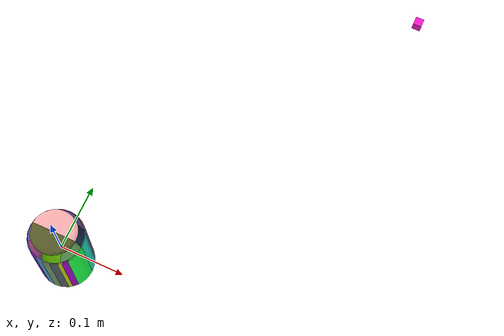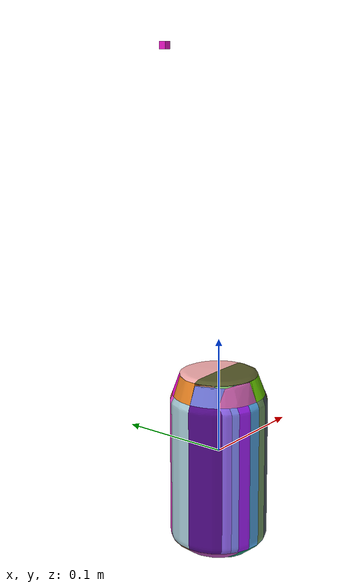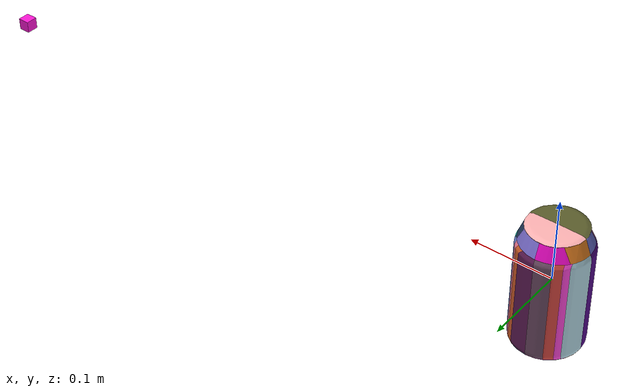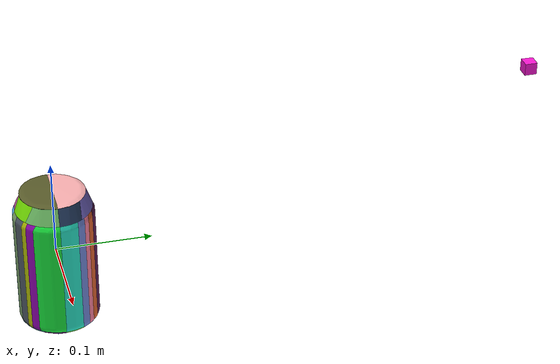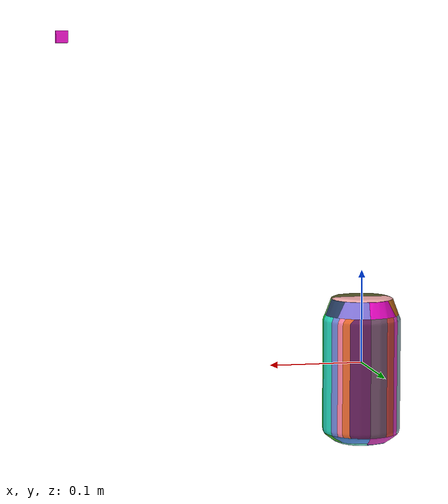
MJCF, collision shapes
<?xml version="1.0" encoding="utf-8"?>
<mujoco model="top_watertight_tiny">

  <asset>

    <mesh file="top_watertight_tiny.obj"/>

    <mesh file="top_watertight_tiny_collision_0.obj"/>

    <mesh file="top_watertight_tiny_collision_1.obj"/>

    <mesh file="top_watertight_tiny_collision_2.obj"/>

    <mesh file="top_watertight_tiny_collision_3.obj"/>

    <mesh file="top_watertight_tiny_collision_4.obj"/>

    <mesh file="top_watertight_tiny_collision_5.obj"/>

    <mesh file="top_watertight_tiny_collision_6.obj"/>

    <mesh file="top_watertight_tiny_collision_7.obj"/>

    <mesh file="top_watertight_tiny_collision_8.obj"/>

    <mesh file="top_watertight_tiny_collision_9.obj"/>

    <mesh file="top_watertight_tiny_collision_10.obj"/>

    <mesh file="top_watertight_tiny_collision_11.obj"/>

    <mesh file="top_watertight_tiny_collision_12.obj"/>

    <mesh file="top_watertight_tiny_collision_13.obj"/>

    <mesh file="top_watertight_tiny_collision_14.obj"/>

    <mesh file="top_watertight_tiny_collision_15.obj"/>

    <mesh file="top_watertight_tiny_collision_16.obj"/>

    <mesh file="top_watertight_tiny_collision_17.obj"/>

    <mesh file="top_watertight_tiny_collision_18.obj"/>

    <mesh file="top_watertight_tiny_collision_19.obj"/>

    <mesh file="top_watertight_tiny_collision_20.obj"/>

    <mesh file="top_watertight_tiny_collision_21.obj"/>

    <mesh file="top_watertight_tiny_collision_22.obj"/>

    <mesh file="top_watertight_tiny_collision_23.obj"/>

    <mesh file="top_watertight_tiny_collision_24.obj"/>

    <mesh file="top_watertight_tiny_collision_25.obj"/>

    <mesh file="top_watertight_tiny_collision_26.obj"/>

    <mesh file="top_watertight_tiny_collision_27.obj"/>

    <mesh file="top_watertight_tiny_collision_28.obj"/>

    <mesh file="top_watertight_tiny_collision_29.obj"/>

    <mesh file="top_watertight_tiny_collision_30.obj"/>

    <mesh file="top_watertight_tiny_collision_31.obj"/>

    <mesh file="top_watertight_tiny_collision_32.obj"/>

    <mesh file="top_watertight_tiny_collision_33.obj"/>

    <mesh file="top_watertight_tiny_collision_34.obj"/>

    <mesh file="top_watertight_tiny_collision_35.obj"/>

    <mesh file="top_watertight_tiny_collision_36.obj"/>

    <mesh file="top_watertight_tiny_collision_37.obj"/>

    <mesh file="top_watertight_tiny_collision_38.obj"/>

    <mesh file="top_watertight_tiny_collision_39.obj"/>

    <mesh file="top_watertight_tiny_collision_40.obj"/>

    <mesh file="top_watertight_tiny_collision_41.obj"/>

    <mesh file="top_watertight_tiny_collision_42.obj"/>

    <mesh file="top_watertight_tiny_collision_43.obj"/>

    <mesh file="top_watertight_tiny_collision_44.obj"/>

    <mesh file="top_watertight_tiny_collision_45.obj"/>

    <mesh file="top_watertight_tiny_collision_46.obj"/>

    <mesh file="bottom_watertight_tiny.obj"/>

    <mesh file="bottom_watertight_tiny_collision_0.obj"/>

  </asset>

  <worldbody>

    <body name="top_watertight_tiny">

      <freejoint/>

      <geom mesh="top_watertight_tiny" group="2" type="mesh" rgba="0.4 0.2 0.7 1" contype="0" conaffinity="0" solimp="0.90 0.95 0.001" solref="0.02 1.0" density="100" friction="0.95 0.4 0.3"/>

      <geom mesh="top_watertight_tiny_collision_0" rgba="0.9808587149216802 0.688757004252128 0.6914227652455278 1" group="3" type="mesh" solimp="0.90 0.95 0.001" solref="0.02 1.0" density="100" friction="0.95 0.4 0.3"/>

      <geom mesh="top_watertight_tiny_collision_1" rgba="0.3473590171456915 0.3564221612091083 0.16524375259850732 1" group="3" type="mesh" solimp="0.90 0.95 0.001" solref="0.02 1.0" density="100" friction="0.95 0.4 0.3"/>

      <geom mesh="top_watertight_tiny_collision_2" rgba="0.4911159556395729 0.5210268594249214 0.9342030591898492 1" group="3" type="mesh" solimp="0.90 0.95 0.001" solref="0.02 1.0" density="100" friction="0.95 0.4 0.3"/>

      <geom mesh="top_watertight_tiny_collision_3" rgba="0.4416828634371327 0.5307447166107859 0.8498162715234978 1" group="3" type="mesh" solimp="0.90 0.95 0.001" solref="0.02 1.0" density="100" friction="0.95 0.4 0.3"/>

      <geom mesh="top_watertight_tiny_collision_4" rgba="0.5262390945720031 0.4722169084664546 0.8768640225006195 1" group="3" type="mesh" solimp="0.90 0.95 0.001" solref="0.02 1.0" density="100" friction="0.95 0.4 0.3"/>

      <geom mesh="top_watertight_tiny_collision_5" rgba="0.42536211377563193 0.4526179426788307 0.828663969504089 1" group="3" type="mesh" solimp="0.90 0.95 0.001" solref="0.02 1.0" density="100" friction="0.95 0.4 0.3"/>

      <geom mesh="top_watertight_tiny_collision_6" rgba="0.9778428919842519 0.03647350226275248 0.8191177751614085 1" group="3" type="mesh" solimp="0.90 0.95 0.001" solref="0.02 1.0" density="100" friction="0.95 0.4 0.3"/>

      <geom mesh="top_watertight_tiny_collision_7" rgba="0.44916284037315934 0.7608011051155579 0.41473869874237446 1" group="3" type="mesh" solimp="0.90 0.95 0.001" solref="0.02 1.0" density="100" friction="0.95 0.4 0.3"/>

      <geom mesh="top_watertight_tiny_collision_8" rgba="0.15395705277010763 0.24753919171630434 0.3932170310370786 1" group="3" type="mesh" solimp="0.90 0.95 0.001" solref="0.02 1.0" density="100" friction="0.95 0.4 0.3"/>

      <geom mesh="top_watertight_tiny_collision_9" rgba="0.7386600875913494 0.3374003104110699 0.6238710651830102 1" group="3" type="mesh" solimp="0.90 0.95 0.001" solref="0.02 1.0" density="100" friction="0.95 0.4 0.3"/>

      <geom mesh="top_watertight_tiny_collision_10" rgba="0.4850038502533529 0.921880714996117 0.015849229714582136 1" group="3" type="mesh" solimp="0.90 0.95 0.001" solref="0.02 1.0" density="100" friction="0.95 0.4 0.3"/>

      <geom mesh="top_watertight_tiny_collision_11" rgba="0.9021381200886316 0.5085046637491153 0.13079843166298932 1" group="3" type="mesh" solimp="0.90 0.95 0.001" solref="0.02 1.0" density="100" friction="0.95 0.4 0.3"/>

      <geom mesh="top_watertight_tiny_collision_12" rgba="0.5093246040369562 0.973107435214147 0.8696465715877947 1" group="3" type="mesh" solimp="0.90 0.95 0.001" solref="0.02 1.0" density="100" friction="0.95 0.4 0.3"/>

      <geom mesh="top_watertight_tiny_collision_13" rgba="0.3000911308608444 0.4532844225092436 0.7566468747696361 1" group="3" type="mesh" solimp="0.90 0.95 0.001" solref="0.02 1.0" density="100" friction="0.95 0.4 0.3"/>

      <geom mesh="top_watertight_tiny_collision_14" rgba="0.08905793487114944 0.8194375822400806 0.8970729406717702 1" group="3" type="mesh" solimp="0.90 0.95 0.001" solref="0.02 1.0" density="100" friction="0.95 0.4 0.3"/>

      <geom mesh="top_watertight_tiny_collision_15" rgba="0.5539278079134559 0.38882275629255114 0.9264363013831987 1" group="3" type="mesh" solimp="0.90 0.95 0.001" solref="0.02 1.0" density="100" friction="0.95 0.4 0.3"/>

      <geom mesh="top_watertight_tiny_collision_16" rgba="0.08716721618365852 0.48778890098608063 0.3805932124143636 1" group="3" type="mesh" solimp="0.90 0.95 0.001" solref="0.02 1.0" density="100" friction="0.95 0.4 0.3"/>

      <geom mesh="top_watertight_tiny_collision_17" rgba="0.28997709478690137 0.037535916907971534 0.37832591582696606 1" group="3" type="mesh" solimp="0.90 0.95 0.001" solref="0.02 1.0" density="100" friction="0.95 0.4 0.3"/>

      <geom mesh="top_watertight_tiny_collision_18" rgba="0.35136572758331397 0.6056470815947954 0.9492093004254282 1" group="3" type="mesh" solimp="0.90 0.95 0.001" solref="0.02 1.0" density="100" friction="0.95 0.4 0.3"/>

      <geom mesh="top_watertight_tiny_collision_19" rgba="0.8062298940353345 0.22761083115589886 0.6935089185970209 1" group="3" type="mesh" solimp="0.90 0.95 0.001" solref="0.02 1.0" density="100" friction="0.95 0.4 0.3"/>

      <geom mesh="top_watertight_tiny_collision_20" rgba="0.34083407453605463 0.8388831304881426 0.2015664433031018 1" group="3" type="mesh" solimp="0.90 0.95 0.001" solref="0.02 1.0" density="100" friction="0.95 0.4 0.3"/>

      <geom mesh="top_watertight_tiny_collision_21" rgba="0.16434492647424703 0.5978748443350232 0.7423558754152112 1" group="3" type="mesh" solimp="0.90 0.95 0.001" solref="0.02 1.0" density="100" friction="0.95 0.4 0.3"/>

      <geom mesh="top_watertight_tiny_collision_22" rgba="0.6484625601361143 0.27460000026912246 0.6437339130827467 1" group="3" type="mesh" solimp="0.90 0.95 0.001" solref="0.02 1.0" density="100" friction="0.95 0.4 0.3"/>

      <geom mesh="top_watertight_tiny_collision_23" rgba="0.671417482931777 0.40336617643704675 0.21695505783377655 1" group="3" type="mesh" solimp="0.90 0.95 0.001" solref="0.02 1.0" density="100" friction="0.95 0.4 0.3"/>

      <geom mesh="top_watertight_tiny_collision_24" rgba="0.15577813823687603 0.8887822343688959 0.7768674664183487 1" group="3" type="mesh" solimp="0.90 0.95 0.001" solref="0.02 1.0" density="100" friction="0.95 0.4 0.3"/>

      <geom mesh="top_watertight_tiny_collision_25" rgba="0.6784209004931536 0.8230380276599422 0.8707802493330175 1" group="3" type="mesh" solimp="0.90 0.95 0.001" solref="0.02 1.0" density="100" friction="0.95 0.4 0.3"/>

      <geom mesh="top_watertight_tiny_collision_26" rgba="0.10740649367738042 0.9350657738170779 0.2566507055065349 1" group="3" type="mesh" solimp="0.90 0.95 0.001" solref="0.02 1.0" density="100" friction="0.95 0.4 0.3"/>

      <geom mesh="top_watertight_tiny_collision_27" rgba="0.45720634946196714 0.31952504705819484 0.42260065042945394 1" group="3" type="mesh" solimp="0.90 0.95 0.001" solref="0.02 1.0" density="100" friction="0.95 0.4 0.3"/>

      <geom mesh="top_watertight_tiny_collision_28" rgba="0.32125911891085235 0.04043372258875111 0.5390689142321953 1" group="3" type="mesh" solimp="0.90 0.95 0.001" solref="0.02 1.0" density="100" friction="0.95 0.4 0.3"/>

      <geom mesh="top_watertight_tiny_collision_29" rgba="0.886580938478743 0.8394381153817605 0.7018503859846921 1" group="3" type="mesh" solimp="0.90 0.95 0.001" solref="0.02 1.0" density="100" friction="0.95 0.4 0.3"/>

      <geom mesh="top_watertight_tiny_collision_30" rgba="0.5374088352771527 0.8179889993490564 0.44425968096475477 1" group="3" type="mesh" solimp="0.90 0.95 0.001" solref="0.02 1.0" density="100" friction="0.95 0.4 0.3"/>

      <geom mesh="top_watertight_tiny_collision_31" rgba="0.884877479795815 0.30176057259251954 0.2724707805183456 1" group="3" type="mesh" solimp="0.90 0.95 0.001" solref="0.02 1.0" density="100" friction="0.95 0.4 0.3"/>

      <geom mesh="top_watertight_tiny_collision_32" rgba="0.7523993913021216 0.7993385445672148 0.5329085492409907 1" group="3" type="mesh" solimp="0.90 0.95 0.001" solref="0.02 1.0" density="100" friction="0.95 0.4 0.3"/>

      <geom mesh="top_watertight_tiny_collision_33" rgba="0.22976859655365356 0.7831087404008346 0.6238335884313111 1" group="3" type="mesh" solimp="0.90 0.95 0.001" solref="0.02 1.0" density="100" friction="0.95 0.4 0.3"/>

      <geom mesh="top_watertight_tiny_collision_34" rgba="0.2949805254645984 0.6392130010701911 0.8421522630495121 1" group="3" type="mesh" solimp="0.90 0.95 0.001" solref="0.02 1.0" density="100" friction="0.95 0.4 0.3"/>

      <geom mesh="top_watertight_tiny_collision_35" rgba="0.8973871811401841 0.6105918132617226 0.4274063677981277 1" group="3" type="mesh" solimp="0.90 0.95 0.001" solref="0.02 1.0" density="100" friction="0.95 0.4 0.3"/>

      <geom mesh="top_watertight_tiny_collision_36" rgba="0.6356608447688515 0.12005016455832407 0.9708377309772456 1" group="3" type="mesh" solimp="0.90 0.95 0.001" solref="0.02 1.0" density="100" friction="0.95 0.4 0.3"/>

      <geom mesh="top_watertight_tiny_collision_37" rgba="0.35833722889938824 0.706521899810838 0.9823187762774462 1" group="3" type="mesh" solimp="0.90 0.95 0.001" solref="0.02 1.0" density="100" friction="0.95 0.4 0.3"/>

      <geom mesh="top_watertight_tiny_collision_38" rgba="0.4011725539108404 0.12541422153919246 0.3617941940914833 1" group="3" type="mesh" solimp="0.90 0.95 0.001" solref="0.02 1.0" density="100" friction="0.95 0.4 0.3"/>

      <geom mesh="top_watertight_tiny_collision_39" rgba="0.4914975681422864 0.8938010229788029 0.29158706641226995 1" group="3" type="mesh" solimp="0.90 0.95 0.001" solref="0.02 1.0" density="100" friction="0.95 0.4 0.3"/>

      <geom mesh="top_watertight_tiny_collision_40" rgba="0.3113867196249098 0.35530385808547593 0.40267126529090336 1" group="3" type="mesh" solimp="0.90 0.95 0.001" solref="0.02 1.0" density="100" friction="0.95 0.4 0.3"/>

      <geom mesh="top_watertight_tiny_collision_41" rgba="0.9087925311671166 0.40898639199300846 0.19098803186186497 1" group="3" type="mesh" solimp="0.90 0.95 0.001" solref="0.02 1.0" density="100" friction="0.95 0.4 0.3"/>

      <geom mesh="top_watertight_tiny_collision_42" rgba="0.4805458903282509 0.6404552946611138 0.4227421982213333 1" group="3" type="mesh" solimp="0.90 0.95 0.001" solref="0.02 1.0" density="100" friction="0.95 0.4 0.3"/>

      <geom mesh="top_watertight_tiny_collision_43" rgba="0.9960984991562299 0.5123572368754364 0.6315647123810394 1" group="3" type="mesh" solimp="0.90 0.95 0.001" solref="0.02 1.0" density="100" friction="0.95 0.4 0.3"/>

      <geom mesh="top_watertight_tiny_collision_44" rgba="0.5817078508457035 0.0346133873999066 0.7126646684361023 1" group="3" type="mesh" solimp="0.90 0.95 0.001" solref="0.02 1.0" density="100" friction="0.95 0.4 0.3"/>

      <geom mesh="top_watertight_tiny_collision_45" rgba="0.7198839069883133 0.7686442896242214 0.03209725258832363 1" group="3" type="mesh" solimp="0.90 0.95 0.001" solref="0.02 1.0" density="100" friction="0.95 0.4 0.3"/>

      <geom mesh="top_watertight_tiny_collision_46" rgba="0.9872572953325399 0.2768645364656114 0.8503311843439212 1" group="3" type="mesh" solimp="0.90 0.95 0.001" solref="0.02 1.0" density="100" friction="0.95 0.4 0.3"/>

      <body name="bottom_watertight_tiny">

        <geom mesh="bottom_watertight_tiny" group="2" type="mesh" rgba="1 0 1 0.8" contype="0" conaffinity="0" solimp="0.90 0.95 0.001" solref="0.02 1.0" density="100" friction="0.95 0.4 0.3"/>

        <geom mesh="bottom_watertight_tiny_collision_0" rgba="0.9729554894058683 0.09220471748151005 0.8251665483670433 1" group="3" type="mesh" solimp="0.90 0.95 0.001" solref="0.02 1.0" density="100" friction="0.95 0.4 0.3"/>

        <site name="bottom_watertight_tiny_touch_site" pos="0 0 0" size="0.2" rgba="1 0 0 0." type="sphere"/>
      </body>

      <site name="top_watertight_tiny_touch_site" pos="0 0 0" size="0.2" rgba="1 0 0 0." type="sphere"/>
    </body>

  </worldbody>

  <sensor>
    <touch name="top_watertight_tiny_touch" site="top_watertight_tiny_touch_site"/>
    <touch name="bottom_watertight_tiny_touch" site="bottom_watertight_tiny_touch_site"/>
  </sensor>
</mujoco>
